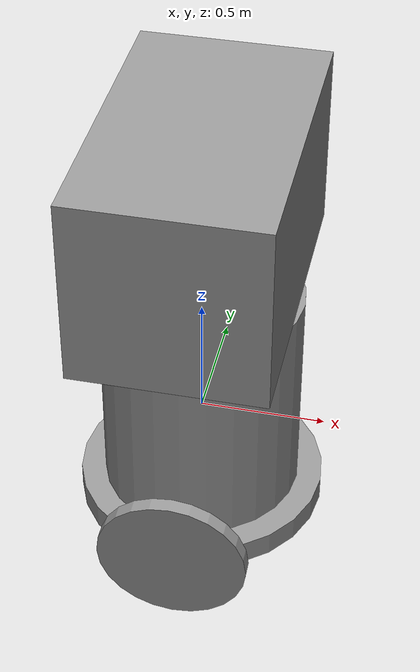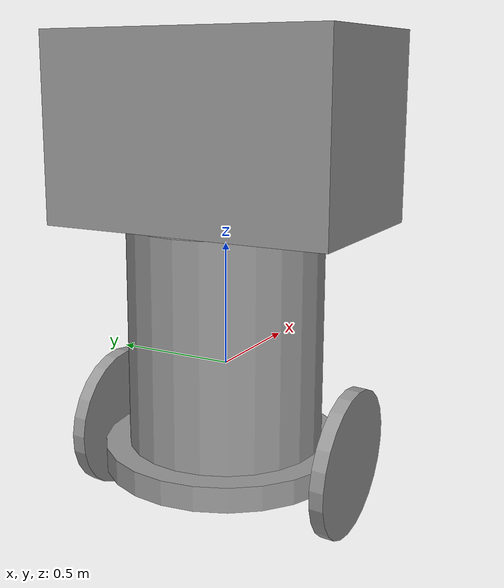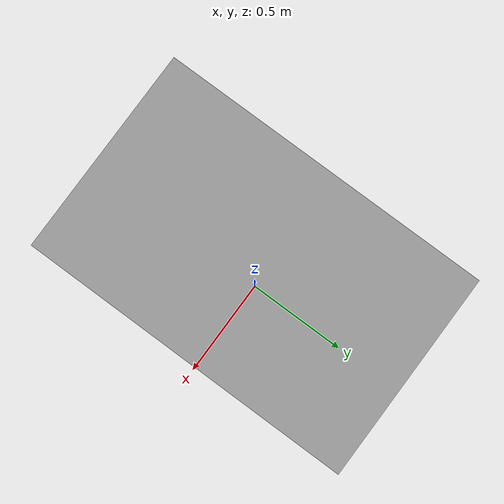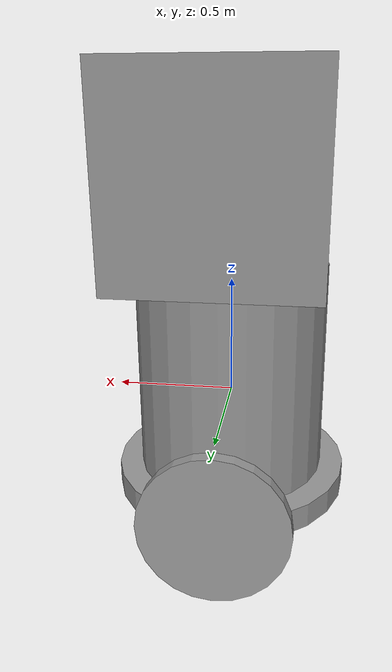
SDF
<?xml version='1.0'?>
<sdf version='1.6'>
  <model name='project_robot'>
    <link name='link_0'>
      <pose frame=''>0 -1.2e-05 -0.372999 0 -0 0</pose>
      <inertial>
        <mass>1.45704</mass>
        <inertia>
          <ixx>0.717125</ixx>
          <ixy>0</ixy>
          <ixz>0</ixz>
          <iyy>0.717125</iyy>
          <iyz>0</iyz>
          <izz>1.42584</izz>
        </inertia>
        <pose frame=''>0 0 0 0 -0 0</pose>
      </inertial>
      <gravity>1</gravity>
      <self_collide>0</self_collide>
      <kinematic>0</kinematic>
      <visual name='visual'>
        <pose frame=''>0 0 0 0 -0 0</pose>
        <geometry>
          <cylinder>
            <radius>0.5</radius>
            <length>0.1</length>
          </cylinder>
        </geometry>
        <material>
          <lighting>1</lighting>
          <script>
            <uri>file://media/materials/scripts/gazebo.material</uri>
            <name>Gazebo/Grey</name>
          </script>
          <shader type='pixel'>
            <normal_map>__default__</normal_map>
          </shader>
          <ambient>0.3 0.3 0.3 1</ambient>
          <diffuse>0.7 0.7 0.7 1</diffuse>
          <specular>0.01 0.01 0.01 1</specular>
          <emissive>0 0 0 1</emissive>
        </material>
        <transparency>0</transparency>
        <cast_shadows>1</cast_shadows>
      </visual>
      <collision name='collision'>
        <laser_retro>0</laser_retro>
        <max_contacts>10</max_contacts>
        <pose frame=''>0 0 0 0 -0 0</pose>
        <geometry>
          <cylinder>
            <radius>0.5</radius>
            <length>0.1</length>
          </cylinder>
        </geometry>
        <surface>
          <friction>
            <ode>
              <mu>1</mu>
              <mu2>1</mu2>
              <fdir1>0 0 0</fdir1>
              <slip1>0</slip1>
              <slip2>0</slip2>
            </ode>
            <torsional>
              <coefficient>1</coefficient>
              <patch_radius>0</patch_radius>
              <surface_radius>0</surface_radius>
              <use_patch_radius>1</use_patch_radius>
              <ode>
                <slip>0</slip>
              </ode>
            </torsional>
          </friction>
          <bounce>
            <restitution_coefficient>0</restitution_coefficient>
            <threshold>1e+06</threshold>
          </bounce>
          <contact>
            <collide_without_contact>0</collide_without_contact>
            <collide_without_contact_bitmask>1</collide_without_contact_bitmask>
            <collide_bitmask>1</collide_bitmask>
            <ode>
              <soft_cfm>0</soft_cfm>
              <soft_erp>0.2</soft_erp>
              <kp>1e+13</kp>
              <kd>1</kd>
              <max_vel>0.01</max_vel>
              <min_depth>0</min_depth>
            </ode>
            <bullet>
              <split_impulse>1</split_impulse>
              <split_impulse_penetration_threshold>-0.01</split_impulse_penetration_threshold>
              <soft_cfm>0</soft_cfm>
              <soft_erp>0.2</soft_erp>
              <kp>1e+13</kp>
              <kd>1</kd>
            </bullet>
          </contact>
        </surface>
      </collision>
    </link>
    <link name='link_1_clone'>
      <pose frame=''>0 0.543317 -0.327999 -1.5207 0 0</pose>
      <inertial>
        <mass>0.106683</mass>
        <inertia>
          <ixx>0.00676888</ixx>
          <ixy>0</ixy>
          <ixz>0</ixz>
          <iyy>0.00676888</iyy>
          <iyz>0</iyz>
          <izz>0.0133354</izz>
        </inertia>
        <pose frame=''>0 0 0 0 -0 0</pose>
      </inertial>
      <gravity>1</gravity>
      <self_collide>0</self_collide>
      <kinematic>0</kinematic>
      <visual name='visual'>
        <pose frame=''>0 0 0 0 -0 0</pose>
        <geometry>
          <cylinder>
            <radius>0.3</radius>
            <length>0.056684</length>
          </cylinder>
        </geometry>
        <material>
          <lighting>1</lighting>
          <script>
            <uri>file://media/materials/scripts/gazebo.material</uri>
            <name>Gazebo/Grey</name>
          </script>
          <shader type='pixel'>
            <normal_map>__default__</normal_map>
          </shader>
          <ambient>0.3 0.3 0.3 1</ambient>
          <diffuse>0.7 0.7 0.7 1</diffuse>
          <specular>0.01 0.01 0.01 1</specular>
          <emissive>0 0 0 1</emissive>
        </material>
        <transparency>0</transparency>
        <cast_shadows>1</cast_shadows>
      </visual>
      <collision name='collision'>
        <laser_retro>0</laser_retro>
        <max_contacts>10</max_contacts>
        <pose frame=''>0 0 0 0 -0 0</pose>
        <geometry>
          <cylinder>
            <radius>0.3</radius>
            <length>0.056684</length>
          </cylinder>
        </geometry>
        <surface>
          <friction>
            <ode>
              <mu>1</mu>
              <mu2>1</mu2>
              <fdir1>0 0 0</fdir1>
              <slip1>0</slip1>
              <slip2>0</slip2>
            </ode>
            <torsional>
              <coefficient>1</coefficient>
              <patch_radius>0</patch_radius>
              <surface_radius>0</surface_radius>
              <use_patch_radius>1</use_patch_radius>
              <ode>
                <slip>0</slip>
              </ode>
            </torsional>
          </friction>
          <bounce>
            <restitution_coefficient>0</restitution_coefficient>
            <threshold>1e+06</threshold>
          </bounce>
          <contact>
            <collide_without_contact>0</collide_without_contact>
            <collide_without_contact_bitmask>1</collide_without_contact_bitmask>
            <collide_bitmask>1</collide_bitmask>
            <ode>
              <soft_cfm>0</soft_cfm>
              <soft_erp>0.2</soft_erp>
              <kp>1e+13</kp>
              <kd>1</kd>
              <max_vel>0.01</max_vel>
              <min_depth>0</min_depth>
            </ode>
            <bullet>
              <split_impulse>1</split_impulse>
              <split_impulse_penetration_threshold>-0.01</split_impulse_penetration_threshold>
              <soft_cfm>0</soft_cfm>
              <soft_erp>0.2</soft_erp>
              <kp>1e+13</kp>
              <kd>1</kd>
            </bullet>
          </contact>
        </surface>
      </collision>
    </link>
    <link name='link_1_clone_clone'>
      <pose frame=''>0 -0.543341 -0.327999 -1.5207 0 0</pose>
      <inertial>
        <mass>0.106683</mass>
        <inertia>
          <ixx>0.00676888</ixx>
          <ixy>0</ixy>
          <ixz>0</ixz>
          <iyy>0.00676888</iyy>
          <iyz>0</iyz>
          <izz>0.0133354</izz>
        </inertia>
        <pose frame=''>0 0 0 0 -0 0</pose>
      </inertial>
      <self_collide>0</self_collide>
      <kinematic>0</kinematic>
      <visual name='visual'>
        <pose frame=''>0 0 0 0 -0 0</pose>
        <geometry>
          <cylinder>
            <radius>0.3</radius>
            <length>0.056684</length>
          </cylinder>
        </geometry>
        <material>
          <lighting>1</lighting>
          <script>
            <uri>file://media/materials/scripts/gazebo.material</uri>
            <name>Gazebo/Grey</name>
          </script>
          <shader type='pixel'>
            <normal_map>__default__</normal_map>
          </shader>
          <ambient>0.3 0.3 0.3 1</ambient>
          <diffuse>0.7 0.7 0.7 1</diffuse>
          <specular>0.01 0.01 0.01 1</specular>
          <emissive>0 0 0 1</emissive>
        </material>
        <transparency>0</transparency>
        <cast_shadows>1</cast_shadows>
      </visual>
      <collision name='collision'>
        <laser_retro>0</laser_retro>
        <max_contacts>10</max_contacts>
        <pose frame=''>0 0 0 0 -0 0</pose>
        <geometry>
          <cylinder>
            <radius>0.3</radius>
            <length>0.056684</length>
          </cylinder>
        </geometry>
        <surface>
          <friction>
            <ode>
              <mu>1</mu>
              <mu2>1</mu2>
              <fdir1>0 0 0</fdir1>
              <slip1>0</slip1>
              <slip2>0</slip2>
            </ode>
            <torsional>
              <coefficient>1</coefficient>
              <patch_radius>0</patch_radius>
              <surface_radius>0</surface_radius>
              <use_patch_radius>1</use_patch_radius>
              <ode>
                <slip>0</slip>
              </ode>
            </torsional>
          </friction>
          <bounce>
            <restitution_coefficient>0</restitution_coefficient>
            <threshold>1e+06</threshold>
          </bounce>
          <contact>
            <collide_without_contact>0</collide_without_contact>
            <collide_without_contact_bitmask>1</collide_without_contact_bitmask>
            <collide_bitmask>1</collide_bitmask>
            <ode>
              <soft_cfm>0</soft_cfm>
              <soft_erp>0.2</soft_erp>
              <kp>1e+13</kp>
              <kd>1</kd>
              <max_vel>0.01</max_vel>
              <min_depth>0</min_depth>
            </ode>
            <bullet>
              <split_impulse>1</split_impulse>
              <split_impulse_penetration_threshold>-0.01</split_impulse_penetration_threshold>
              <soft_cfm>0</soft_cfm>
              <soft_erp>0.2</soft_erp>
              <kp>1e+13</kp>
              <kd>1</kd>
            </bullet>
          </contact>
        </surface>
      </collision>
    </link>
    <link name='link_2'>
      <pose frame=''>0 0 0.077001 0 -0 0</pose>
      <inertial>
        <mass>1</mass>
        <inertia>
          <ixx>0.145833</ixx>
          <ixy>0</ixy>
          <ixz>0</ixz>
          <iyy>0.145833</iyy>
          <iyz>0</iyz>
          <izz>0.125</izz>
        </inertia>
        <pose frame=''>0 0 0 0 -0 0</pose>
      </inertial>
      <gravity>1</gravity>
      <self_collide>0</self_collide>
      <kinematic>0</kinematic>
      <visual name='visual'>
        <pose frame=''>0 0 0 0 -0 0</pose>
        <geometry>
          <cylinder>
            <radius>0.4</radius>
            <length>1</length>
          </cylinder>
        </geometry>
        <material>
          <lighting>1</lighting>
          <script>
            <uri>file://media/materials/scripts/gazebo.material</uri>
            <name>Gazebo/Grey</name>
          </script>
          <shader type='pixel'>
            <normal_map>__default__</normal_map>
          </shader>
          <ambient>0.3 0.3 0.3 1</ambient>
          <diffuse>0.7 0.7 0.7 1</diffuse>
          <specular>0.01 0.01 0.01 1</specular>
          <emissive>0 0 0 1</emissive>
        </material>
        <transparency>0</transparency>
        <cast_shadows>1</cast_shadows>
      </visual>
      <collision name='collision'>
        <laser_retro>0</laser_retro>
        <max_contacts>10</max_contacts>
        <pose frame=''>0 0 0 0 -0 0</pose>
        <geometry>
          <cylinder>
            <radius>0.4</radius>
            <length>1</length>
          </cylinder>
        </geometry>
        <surface>
          <friction>
            <ode>
              <mu>1</mu>
              <mu2>1</mu2>
              <fdir1>0 0 0</fdir1>
              <slip1>0</slip1>
              <slip2>0</slip2>
            </ode>
            <torsional>
              <coefficient>1</coefficient>
              <patch_radius>0</patch_radius>
              <surface_radius>0</surface_radius>
              <use_patch_radius>1</use_patch_radius>
              <ode>
                <slip>0</slip>
              </ode>
            </torsional>
          </friction>
          <bounce>
            <restitution_coefficient>0</restitution_coefficient>
            <threshold>1e+06</threshold>
          </bounce>
          <contact>
            <collide_without_contact>0</collide_without_contact>
            <collide_without_contact_bitmask>1</collide_without_contact_bitmask>
            <collide_bitmask>1</collide_bitmask>
            <ode>
              <soft_cfm>0</soft_cfm>
              <soft_erp>0.2</soft_erp>
              <kp>1e+13</kp>
              <kd>1</kd>
              <max_vel>0.01</max_vel>
              <min_depth>0</min_depth>
            </ode>
            <bullet>
              <split_impulse>1</split_impulse>
              <split_impulse_penetration_threshold>-0.01</split_impulse_penetration_threshold>
              <soft_cfm>0</soft_cfm>
              <soft_erp>0.2</soft_erp>
              <kp>1e+13</kp>
              <kd>1</kd>
            </bullet>
          </contact>
        </surface>
      </collision>
    </link>
    <link name='link_6'>
      <pose frame=''>0 0 0.952001 0 -0 0</pose>
      <inertial>
        <mass>1</mass>
        <inertia>
          <ixx>0.166667</ixx>
          <ixy>0</ixy>
          <ixz>0</ixz>
          <iyy>0.166667</iyy>
          <iyz>0</iyz>
          <izz>0.166667</izz>
        </inertia>
        <pose frame=''>0 0 0 0 -0 0</pose>
      </inertial>
      <gravity>1</gravity>
      <self_collide>0</self_collide>
      <kinematic>0</kinematic>
      <visual name='visual'>
        <pose frame=''>0 0 0 0 -0 0</pose>
        <geometry>
          <box>
            <size>0.75 1.2 0.75</size>
          </box>
        </geometry>
        <material>
          <lighting>1</lighting>
          <script>
            <uri>file://media/materials/scripts/gazebo.material</uri>
            <name>Gazebo/Grey</name>
          </script>
          <shader type='pixel'>
            <normal_map>__default__</normal_map>
          </shader>
          <ambient>0.3 0.3 0.3 1</ambient>
          <diffuse>0.7 0.7 0.7 1</diffuse>
          <specular>0.01 0.01 0.01 1</specular>
          <emissive>0 0 0 1</emissive>
        </material>
        <transparency>0</transparency>
        <cast_shadows>1</cast_shadows>
      </visual>
      <collision name='collision'>
        <laser_retro>0</laser_retro>
        <max_contacts>10</max_contacts>
        <pose frame=''>0 0 0 0 -0 0</pose>
        <geometry>
          <box>
            <size>0.75 1.2 0.75</size>
          </box>
        </geometry>
        <surface>
          <friction>
            <ode>
              <mu>1</mu>
              <mu2>1</mu2>
              <fdir1>0 0 0</fdir1>
              <slip1>0</slip1>
              <slip2>0</slip2>
            </ode>
            <torsional>
              <coefficient>1</coefficient>
              <patch_radius>0</patch_radius>
              <surface_radius>0</surface_radius>
              <use_patch_radius>1</use_patch_radius>
              <ode>
                <slip>0</slip>
              </ode>
            </torsional>
          </friction>
          <bounce>
            <restitution_coefficient>0</restitution_coefficient>
            <threshold>1e+06</threshold>
          </bounce>
          <contact>
            <collide_without_contact>0</collide_without_contact>
            <collide_without_contact_bitmask>1</collide_without_contact_bitmask>
            <collide_bitmask>1</collide_bitmask>
            <ode>
              <soft_cfm>0</soft_cfm>
              <soft_erp>0.2</soft_erp>
              <kp>1e+13</kp>
              <kd>1</kd>
              <max_vel>0.01</max_vel>
              <min_depth>0</min_depth>
            </ode>
            <bullet>
              <split_impulse>1</split_impulse>
              <split_impulse_penetration_threshold>-0.01</split_impulse_penetration_threshold>
              <soft_cfm>0</soft_cfm>
              <soft_erp>0.2</soft_erp>
              <kp>1e+13</kp>
              <kd>1</kd>
            </bullet>
          </contact>
        </surface>
      </collision>
    </link>
    <joint name='link_0_JOINT_10' type='revolute'>
      <parent>link_0</parent>
      <child>link_2</child>
      <pose frame=''>0 0 0 0 -0 0</pose>
      <axis>
        <xyz>1 0 0</xyz>
        <use_parent_model_frame>0</use_parent_model_frame>
        <limit>
          <lower>-1.79769e+308</lower>
          <upper>1.79769e+308</upper>
          <effort>-1</effort>
          <velocity>-1</velocity>
        </limit>
        <dynamics>
          <spring_reference>0</spring_reference>
          <spring_stiffness>0</spring_stiffness>
          <damping>0</damping>
        </dynamics>
      </axis>
      <physics>
        <ode>
          <limit>
            <cfm>0</cfm>
            <erp>0.2</erp>
          </limit>
          <suspension>
            <cfm>0</cfm>
            <erp>0.2</erp>
          </suspension>
        </ode>
      </physics>
    </joint>
    <joint name='link_0_JOINT_6' type='revolute'>
      <parent>link_0</parent>
      <child>link_1_clone_clone</child>
      <pose frame=''>0 0 0 0 -0 0</pose>
      <axis>
        <xyz>0 0 1</xyz>
        <use_parent_model_frame>0</use_parent_model_frame>
        <limit>
          <lower>-1.79769e+308</lower>
          <upper>1.79769e+308</upper>
          <effort>-1</effort>
          <velocity>-1</velocity>
        </limit>
        <dynamics>
          <spring_reference>0</spring_reference>
          <spring_stiffness>0</spring_stiffness>
          <damping>0</damping>
        </dynamics>
      </axis>
      <physics>
        <ode>
          <limit>
            <cfm>0</cfm>
            <erp>0.2</erp>
          </limit>
          <suspension>
            <cfm>0</cfm>
            <erp>0.2</erp>
          </suspension>
        </ode>
      </physics>
    </joint>
    <joint name='link_0_JOINT_7' type='revolute'>
      <parent>link_0</parent>
      <child>link_1_clone</child>
      <pose frame=''>0 0 0 0 -0 0</pose>
      <axis>
        <xyz>1 0 0</xyz>
        <use_parent_model_frame>0</use_parent_model_frame>
        <limit>
          <lower>-1.79769e+308</lower>
          <upper>1.79769e+308</upper>
          <effort>-1</effort>
          <velocity>-1</velocity>
        </limit>
        <dynamics>
          <spring_reference>0</spring_reference>
          <spring_stiffness>0</spring_stiffness>
          <damping>0</damping>
        </dynamics>
      </axis>
      <physics>
        <ode>
          <limit>
            <cfm>0</cfm>
            <erp>0.2</erp>
          </limit>
          <suspension>
            <cfm>0</cfm>
            <erp>0.2</erp>
          </suspension>
        </ode>
      </physics>
    </joint>
    <joint name='link_2_JOINT_14' type='revolute'>
      <parent>link_2</parent>
      <child>link_6</child>
      <pose frame=''>0 0 0 0 -0 0</pose>
      <axis>
        <xyz>1 0 0</xyz>
        <use_parent_model_frame>0</use_parent_model_frame>
        <limit>
          <lower>-1.79769e+308</lower>
          <upper>1.79769e+308</upper>
          <effort>-1</effort>
          <velocity>-1</velocity>
        </limit>
        <dynamics>
          <spring_reference>0</spring_reference>
          <spring_stiffness>0</spring_stiffness>
          <damping>0</damping>
        </dynamics>
      </axis>
      <physics>
        <ode>
          <limit>
            <cfm>0</cfm>
            <erp>0.2</erp>
          </limit>
          <suspension>
            <cfm>0</cfm>
            <erp>0.2</erp>
          </suspension>
        </ode>
      </physics>
    </joint>
    <static>0</static>
    <allow_auto_disable>1</allow_auto_disable>
  </model>
</sdf>
